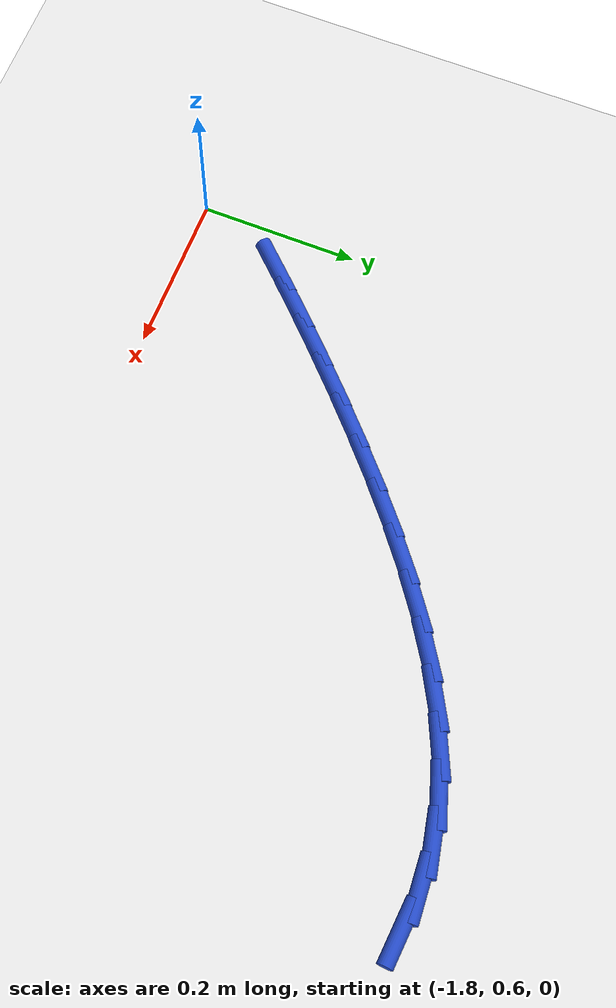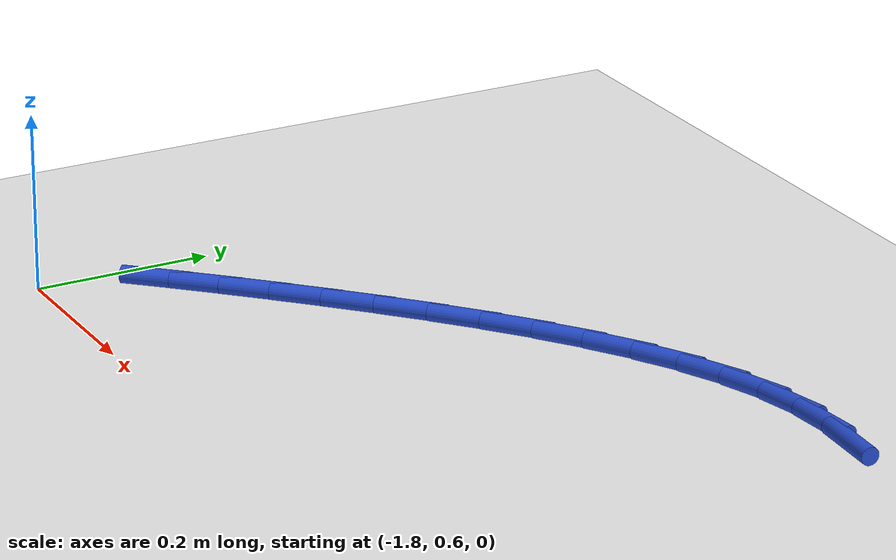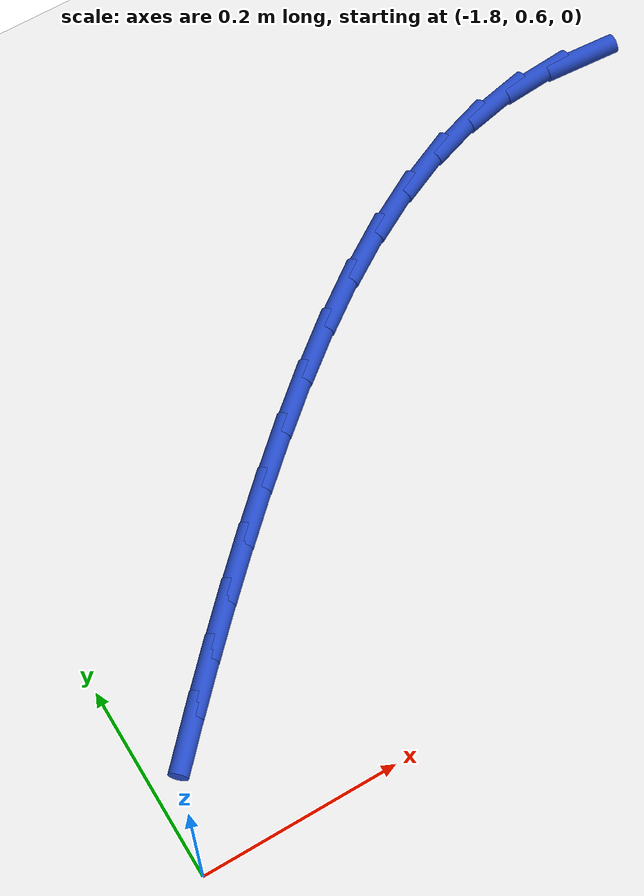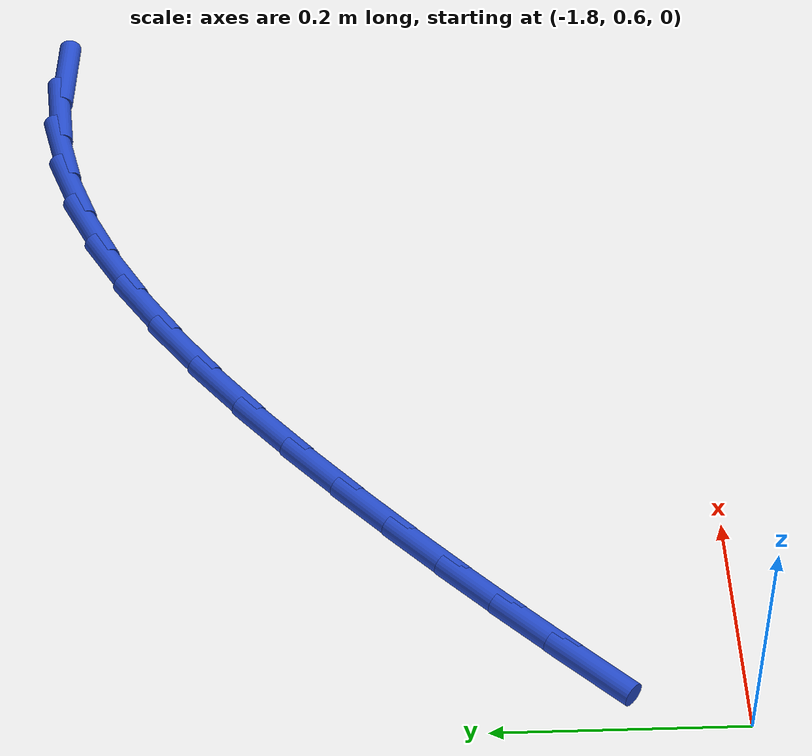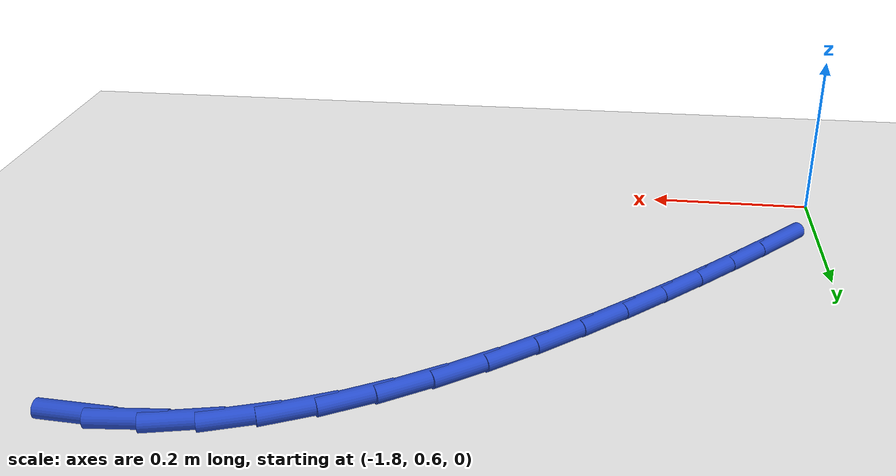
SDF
<sdf version="1.6">
 <world name="default">
  <model name="ground_plane">
   <static>1</static>
   <link name="link">
    <collision name="collision">
     <geometry><plane><normal>0 0 1</normal><size>100 100</size></plane></geometry>
     <surface><friction><ode><mu>100</mu><mu2>50</mu2></ode></friction></surface>
    </collision>
    <visual name="visual">
     <cast_shadows>0</cast_shadows>
     <geometry><plane><normal>0 0 1</normal><size>100 100</size></plane></geometry>
     <material>
      <script><uri>file://media/materials/scripts/gazebo.material</uri><name>Gazebo/WhiteGlow</name></script>
     </material>
    </visual>
   </link>
  </model>
  <model name="line">
   <link name="link_29">
    <pose>-1.0425178097799959 1.14564116505603 0.01 0 1.57 -0.06752875866034007</pose>
    <collision name="collision">
     <geometry><cylinder><radius>0.01</radius><length>0.08</length></cylinder></geometry>
    </collision>
    <visual name="visual">
     <material>
      <script><name>Gazebo/Blue</name><uri>file://media/materials/scripts/gazebo.material</uri></script>
     </material>
     <geometry><cylinder><radius>0.01</radius><length>0.08</length></cylinder></geometry>
    </visual>
   </link>
   <link name="link_30">
    <pose>-1.0944751215812816 1.1491551208186612 0.01 0 1.57 0.07768728316608331</pose>
    <collision name="collision">
     <geometry><cylinder><radius>0.01</radius><length>0.08</length></cylinder></geometry>
    </collision>
    <visual name="visual">
     <material>
      <script><name>Gazebo/Blue</name><uri>file://media/materials/scripts/gazebo.material</uri></script>
     </material>
     <geometry><cylinder><radius>0.01</radius><length>0.08</length></cylinder></geometry>
    </visual>
   </link>
   <link name="link_31">
    <pose>-1.1463637987878508 1.1451159012018073 0.01 0 1.57 0.21506542543320395</pose>
    <collision name="collision">
     <geometry><cylinder><radius>0.01</radius><length>0.08</length></cylinder></geometry>
    </collision>
    <visual name="visual">
     <material>
      <script><name>Gazebo/Blue</name><uri>file://media/materials/scripts/gazebo.material</uri></script>
     </material>
     <geometry><cylinder><radius>0.01</radius><length>0.08</length></cylinder></geometry>
    </visual>
   </link>
   <link name="link_32">
    <pose>-1.1980529280211702 1.133824733485456 0.01 0 1.57 0.3327749083738597</pose>
    <collision name="collision">
     <geometry><cylinder><radius>0.01</radius><length>0.08</length></cylinder></geometry>
    </collision>
    <visual name="visual">
     <material>
      <script><name>Gazebo/Blue</name><uri>file://media/materials/scripts/gazebo.material</uri></script>
     </material>
     <geometry><cylinder><radius>0.01</radius><length>0.08</length></cylinder></geometry>
    </visual>
   </link>
   <link name="link_33">
    <pose>-1.2493816119992611 1.1160840879592746 0.01 0 1.57 0.4313485751496878</pose>
    <collision name="collision">
     <geometry><cylinder><radius>0.01</radius><length>0.08</length></cylinder></geometry>
    </collision>
    <visual name="visual">
     <material>
      <script><name>Gazebo/Blue</name><uri>file://media/materials/scripts/gazebo.material</uri></script>
     </material>
     <geometry><cylinder><radius>0.01</radius><length>0.08</length></cylinder></geometry>
    </visual>
   </link>
   <link name="link_34">
    <pose>-1.3001887468983506 1.0926998876865024 0.01 0 1.57 0.5127956895732224</pose>
    <collision name="collision">
     <geometry><cylinder><radius>0.01</radius><length>0.08</length></cylinder></geometry>
    </collision>
    <visual name="visual">
     <material>
      <script><name>Gazebo/Blue</name><uri>file://media/materials/scripts/gazebo.material</uri></script>
     </material>
     <geometry><cylinder><radius>0.01</radius><length>0.08</length></cylinder></geometry>
    </visual>
   </link>
   <link name="link_35">
    <pose>-1.3503132288946682 1.0644780557303806 0.01 0 1.57 0.5795223024283458</pose>
    <collision name="collision">
     <geometry><cylinder><radius>0.01</radius><length>0.08</length></cylinder></geometry>
    </collision>
    <visual name="visual">
     <material>
      <script><name>Gazebo/Blue</name><uri>file://media/materials/scripts/gazebo.material</uri></script>
     </material>
     <geometry><cylinder><radius>0.01</radius><length>0.08</length></cylinder></geometry>
    </visual>
   </link>
   <link name="link_36">
    <pose>-1.399593954164441 1.0322245151541514 0.01 0 1.57 0.6337855980334568</pose>
    <collision name="collision">
     <geometry><cylinder><radius>0.01</radius><length>0.08</length></cylinder></geometry>
    </collision>
    <visual name="visual">
     <material>
      <script><name>Gazebo/Blue</name><uri>file://media/materials/scripts/gazebo.material</uri></script>
     </material>
     <geometry><cylinder><radius>0.01</radius><length>0.08</length></cylinder></geometry>
    </visual>
   </link>
   <link name="link_37">
    <pose>-1.447869818883898 0.9967451890210546 0.01 0 1.57 0.6774694695273361</pose>
    <collision name="collision">
     <geometry><cylinder><radius>0.01</radius><length>0.08</length></cylinder></geometry>
    </collision>
    <visual name="visual">
     <material>
      <script><name>Gazebo/Blue</name><uri>file://media/materials/scripts/gazebo.material</uri></script>
     </material>
     <geometry><cylinder><radius>0.01</radius><length>0.08</length></cylinder></geometry>
    </visual>
   </link>
   <link name="link_38">
    <pose>-1.4949797192292675 0.9588460003943327 0.01 0 1.57 0.712024831923342</pose>
    <collision name="collision">
     <geometry><cylinder><radius>0.01</radius><length>0.08</length></cylinder></geometry>
    </collision>
    <visual name="visual">
     <material>
      <script><name>Gazebo/Blue</name><uri>file://media/materials/scripts/gazebo.material</uri></script>
     </material>
     <geometry><cylinder><radius>0.01</radius><length>0.08</length></cylinder></geometry>
    </visual>
   </link>
   <link name="link_39">
    <pose>-1.5407625513767773 0.9193328723372254 0.01 0 1.57 0.7384731381067241</pose>
    <collision name="collision">
     <geometry><cylinder><radius>0.01</radius><length>0.08</length></cylinder></geometry>
    </collision>
    <visual name="visual">
     <material>
      <script><name>Gazebo/Blue</name><uri>file://media/materials/scripts/gazebo.material</uri></script>
     </material>
     <geometry><cylinder><radius>0.01</radius><length>0.08</length></cylinder></geometry>
    </visual>
   </link>
   <link name="link_40">
    <pose>-1.585057211502656 0.8790117279129749 0.01 0 1.57 0.7581246387258598</pose>
    <collision name="collision">
     <geometry><cylinder><radius>0.01</radius><length>0.08</length></cylinder></geometry>
    </collision>
    <visual name="visual">
     <material>
      <script><name>Gazebo/Blue</name><uri>file://media/materials/scripts/gazebo.material</uri></script>
     </material>
     <geometry><cylinder><radius>0.01</radius><length>0.08</length></cylinder></geometry>
    </visual>
   </link>
   <link name="link_41">
    <pose>-1.6277473023254492 0.8385889793767004 0.01 0 1.57 0.775060554855485</pose>
    <collision name="collision">
     <geometry><cylinder><radius>0.01</radius><length>0.08</length></cylinder></geometry>
    </collision>
    <visual name="visual">
     <material>
      <script><name>Gazebo/Blue</name><uri>file://media/materials/scripts/gazebo.material</uri></script>
     </material>
     <geometry><cylinder><radius>0.01</radius><length>0.08</length></cylinder></geometry>
    </visual>
   </link>
   <link name="link_42">
    <pose>-1.6689673835972647 0.7982124420552291 0.01 0 1.57 0.7904404772500606</pose>
    <collision name="collision">
     <geometry><cylinder><radius>0.01</radius><length>0.08</length></cylinder></geometry>
    </collision>
    <visual name="visual">
     <material>
      <script><name>Gazebo/Blue</name><uri>file://media/materials/scripts/gazebo.material</uri></script>
     </material>
     <geometry><cylinder><radius>0.01</radius><length>0.08</length></cylinder></geometry>
    </visual>
   </link>
   <link name="link_43">
    <pose>-1.708939521438398 0.7578351537559723 0.01 0 1.57 0.8040280154248265</pose>
    <collision name="collision">
     <geometry><cylinder><radius>0.01</radius><length>0.08</length></cylinder></geometry>
    </collision>
    <visual name="visual">
     <material>
      <script><name>Gazebo/Blue</name><uri>file://media/materials/scripts/gazebo.material</uri></script>
     </material>
     <geometry><cylinder><radius>0.01</radius><length>0.08</length></cylinder></geometry>
    </visual>
   </link>
   <link name="link_44">
    <pose>-1.747885872055893 0.7174099517652452 0.01 0 1.57 0.8156135793334552</pose>
    <collision name="collision">
     <geometry><cylinder><radius>0.01</radius><length>0.08</length></cylinder></geometry>
    </collision>
    <visual name="visual">
     <material>
      <script><name>Gazebo/Blue</name><uri>file://media/materials/scripts/gazebo.material</uri></script>
     </material>
     <geometry><cylinder><radius>0.01</radius><length>0.08</length></cylinder></geometry>
    </visual>
   </link>
  </model>
 </world>
</sdf>
